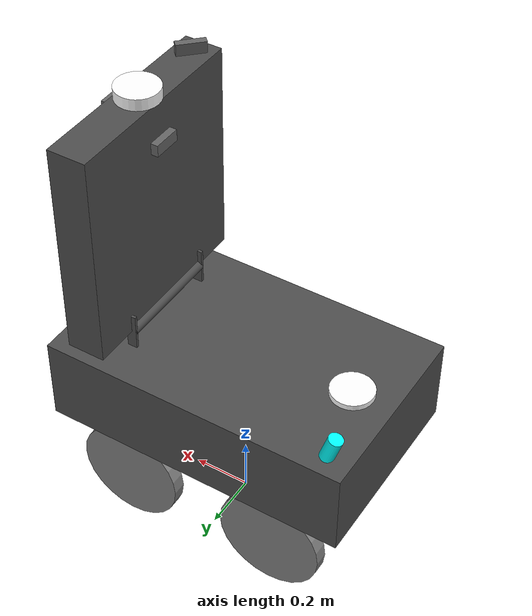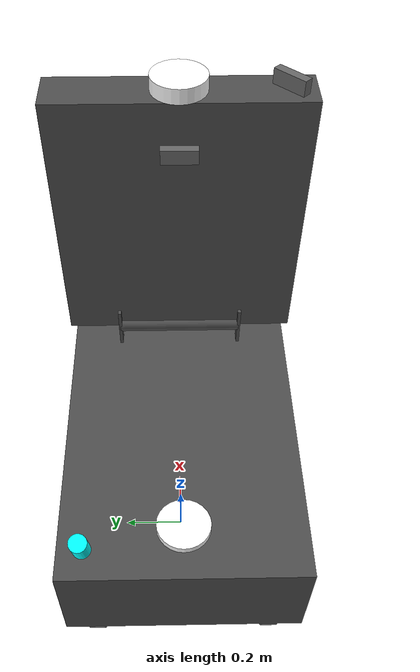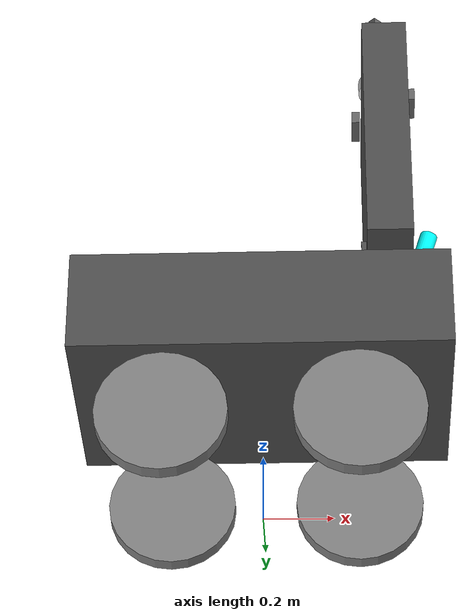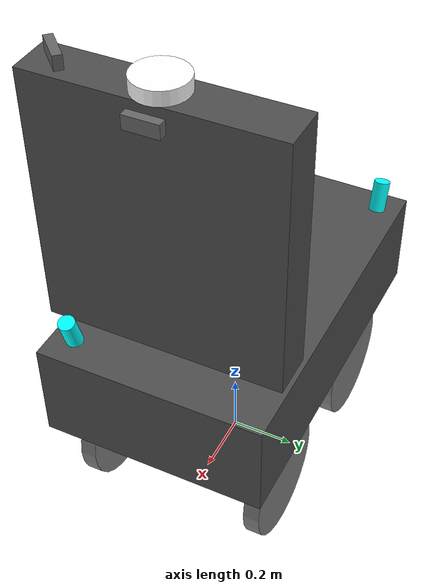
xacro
<?xml version="1.0" ?>
<!-- |    This document was autogenerated by xacro from /home/swimming/gcamp_ros2_ws/src/gcamp_ros2_basic/gcamp_gazebo/urdf/skidbot2.urdf.xacro | -->
<!-- |    EDITING THIS FILE BY HAND IS NOT RECOMMENDED                                 | -->
<robot xmlns:xacro="http://www.ros.org/wiki/xacro" name="easyai">
  <xacro:property name="PI" value="3.1415926535"/><!--파이 값-->

  <xacro:property name="BASE_LEN" value="1.091"/><!--이지아이 몸통  길이-->
  <xacro:property name="BASE_WID" value="0.684"/><!--이지아이 몸통 너비-->
  <xacro:property name="BASE_HIG" value="0.308"/> <!--이지아이 몸통 높이-->

  <xacro:property name="WHEEL_LEN_SEP" value="0.554"/><!--바퀴 세로 간격-->
  <xacro:property name="WHEEL_WID_SEP" value="0.554"/><!--바퀴 가로 간격-->
  <xacro:property name="WHEEL_RAD" value="0.187"/><!--바퀴 반 지름 수정 후 (바퀴 베이스 높이 만큼 바퀴 크기 증가)-->
  <xacro:property name="WHEEL_WID" value="0.05"/><!--바퀴 너비-->

  <!-- 바퀴 베이스 tf 복잡하여 사용 안함(주석 처리) -->

  <xacro:property name="VMS_LEN" value="0.765"/><!--전광판 길이-->
  <xacro:property name="VMS_WID" value="0.701"/><!--전광판 너비 -->
  <xacro:property name="VMS_HIG" value="0.134"/><!--전광판 높이-->

  <xacro:property name="VMS_CYLINDER_RAD" value="0.020"/><!--전광판 관절 반지름 -->
  <xacro:property name="VMS_CYLINDER_WID" value="0.380"/><!--전광판 관절 길이 -->

  <xacro:property name="VMS_CYLINDER_X_LEN" value="0.235"/><!--전면으로부터 전광판 X축 관절 간격 -->

  <xacro:property name="VMS_CYLINDER_BASE_LEN" value="0.035"/><!--전광판 관절 베이스 길이 -->
  <xacro:property name="VMS_CYLINDER_BASE_WID" value="0.01"/><!--전광판 관절 베이스 두께 -->
  <xacro:property name="VMS_CYLINDER_BASE_HIG" value="0.13"/><!--전광판 관절 베이스 높이 -->

  <!-- 라이다 베이스 tf 복잡하여 사용 안함(주석 처리) -->

  <xacro:property name="LIDAR_RAD" value="0.025"/>  <!-- 라이다 길이 -->
  <xacro:property name="LIDAR_HIG" value="0.095"/>  <!-- 라이다 높이(0.06) + 라이다 베이스 높이(0.035)-->
  <!-- 베이스 높이만큼 라이다 높이 증가 -->
  <xacro:property name="M_PI" value="3.14159"/>
  <xacro:property name="laser_min_range" value="0.1"/>
  <xacro:property name="laser_max_range" value="200.0"/>
  <xacro:property name="ros_topic" value="scan"/>
  <xacro:property name="samples" value="24000"/>
  <xacro:property name="downsample" value="1"/>

  <xacro:property name="F_LIDAR_SEP_LEN" value="0.072"/>  <!-- 전면 라이다  세로 간격  -->
  <xacro:property name="F_LIDAR_SEP_WID" value="0.072"/>  <!-- 전면 라이다 가로 간격 -->

  <xacro:property name="B_LIDAR_SEP_LEN" value="0.072"/>  <!-- 후면 라이다  세로 간격  -->
  <xacro:property name="B_LIDAR_SEP_WID" value="0.070"/>  <!-- 후면 라이다 가로 간격 -->

  <xacro:property name="CAMERA_LEN" value="0.025"/>  <!-- 카메라 길이 -->
  <xacro:property name="CAMERA_WID" value="0.1"/>  <!-- 카메라 너비-->
  <xacro:property name="CAMERA_HIG" value="0.04"/>  <!-- 카메라 높이 -->
  <xacro:property name="CAMERA_X_LEN" value="0.042"/>  <!-- 카메라 X 간격 -->
  <xacro:property name="LEFT_CAMERA_Y_LEN" value="0.06"/>  <!-- 왼쪽 카메라 Y 간격 -->

  <xacro:property name="LEFT_CAMERA_X_LEN" value="0.06"/>  <!-- 왼쪽 카메라 X축 간격 -->
  <xacro:property name="LEFT_CAMERA_Y_LEN" value="0.07"/>  <!-- 왼쪽 카메라 Y축 간격 -->

  <xacro:property name="BACK_CAMERA_X_LEN" value="0.13"/>  <!-- 뒤쪽 카메라 X축 간격 -->

  <xacro:property name="GPS_ANTENNA_RAD" value="0.075"/>  <!-- GPS 안테나 반지름 -->
  <xacro:property name="GPS_ANTENNA_HIG" value="0.04"/>  <!-- GPS 안테나 높이 -->

  <xacro:property name="BASE_GPS_ANTENNA_SEP" value="0.15"/>  <!-- 몸통 GPS 안테나 간격  -->

  <xacro:property name="IMU_LEN" value="0.035"/>  <!-- IMU 길이 -->
  <xacro:property name="IMU_WID" value="0.035"/>  <!-- IMU 너비 -->
  <xacro:property name="IMU_HIG" value="0.01"/>  <!-- IMU 높이 -->
  <xacro:property name="IMU_X_SEP" value="0.225"/>  <!-- IMU X축 간격 -->

  <xacro:property name="IMU_GYRO_NOISE" value="0.015"/>
  <xacro:property name="IMU_ACCELEROMETER_NOISE" value="9.81"/>

  <xacro:property name="WHEEL_MASS" value="8.0"/><!--바퀴 무게-->
  <xacro:property name="BASE_LINK_MASS" value="200.0"/><!--이지아이 몸통 무게-->
  <xacro:property name="WHEEL_BASE_MASS" value="4.0"/><!--바퀴 베이스 무게-->

  <xacro:property name="VMS_MASS" value="20.0"/> <!--전광팡 무게-->
  <xacro:property name="VMS_CYLINDER_MASS" value="10.0"/> <!--전광팡 관절 무게-->
  <xacro:property name="VMS_CYLINDER_BASE_MASS" value="1.0"/> <!--전광팡 관절 베이스 무게-->

  <xacro:property name="CAMERA_MASS" value="2.0"/> <!--카메라 무게-->

  <xacro:property name="GPS_ANTENNA_MASS" value="2.0"/> <!--GPS 안테나 무게-->

  <xacro:property name="LIDAR_MASS" value="0.265"/> <!--라이다 무게-->
  <xacro:property name="LIDAR_BASE_MASS" value="0.1"/> <!--라이다 베이스 무게-->

  <xacro:property name="IMU_MASS" value="0.05"/> <!--IMU 무게-->

<!--배터리 탱크 길이-->
<!--배터리 탱크 높이-->
<!--배터리 탱크 너비-->

  <material name="dark">
    <color rgba="0.3 0.3 0.3 1.0"/>
  </material>

  <material name="mid_dark">
    <color rgba="0.40 0.40 0.40 1.0"/>
  </material>

  <material name="gray">
    <color rgba="0.5 0.5 0.5 1.0"/>
  </material>

  <material name="blue_green">
    <color rgba="0 1.0 1.0 1.0"/>
  </material>

  <material name="white">
    <color rgba="1.0 1.0 1.0 1.0"/>
  </material>

  <link name="base_link"/>

  <link name="base_chassis">
    <visual>
      <origin xyz="0 0 0" rpy="0 0 0"/>
      <geometry>
        <box size="${BASE_LEN} ${BASE_WID} ${BASE_HIG}"/>
      </geometry>
      <material name="dark"/>
    </visual>

    <collision>
      <origin xyz="0 0 0" rpy="0 0 0"/>
      <geometry>
        <box size="${BASE_LEN} ${BASE_WID} ${BASE_HIG}"/>
      </geometry>
    </collision>

    <inertial>
      <mass value="${BASE_LINK_MASS}"/>
      <origin xyz="0 0 0" rpy="0 0 0"/>
      <inertia
        ixx="${BASE_LINK_MASS/12.0 * (BASE_WID*BASE_WID + BASE_HIG*BASE_HIG)}"
        iyy="${BASE_LINK_MASS/12.0 * (BASE_LEN*BASE_LEN + BASE_HIG*BASE_HIG)}"
        izz="${BASE_LINK_MASS/12.0 * (BASE_LEN*BASE_LEN + BASE_WID*BASE_WID)}"
        ixy="0.0" ixz="0.0" iyz="0.0"/>
    </inertial>
  </link>

  <link name="imu">
    <visual>
      <origin xyz="0 0 0" rpy="0 0 0"/>
      <geometry>
        <box size="${IMU_LEN} ${IMU_WID} ${IMU_HIG}"/>
      </geometry>
      <material name="mid_dark"/>
    </visual>

    <collision>
      <origin xyz="0 0 0" rpy="0 0 0"/>
      <geometry>
        <box size="${IMU_LEN} ${IMU_WID} ${IMU_HIG}"/>
      </geometry>
    </collision>

    <inertial>
      <mass value="${IMU_MASS}"/>
      <origin xyz="0 0 0" rpy="0 0 0"/>
      <inertia
        ixx="${IMU_MASS/12.0 * (IMU_WID*IMU_WID + IMU_HIG*IMU_HIG)}"
        iyy="${IMU_MASS/12.0 * (IMU_LEN*IMU_LEN + IMU_HIG*IMU_HIG)}"
        izz="${IMU_MASS/12.0 * (IMU_LEN*IMU_LEN + IMU_WID*IMU_WID)}"
        ixy="0" ixz="0" iyz="0"
      />
    </inertial>
  </link>

  <link name="base_link_gps">
    <visual>
      <origin xyz="0 0 0" rpy="0 0 0"/>
      <geometry>
        <cylinder radius="${GPS_ANTENNA_RAD}" length="${GPS_ANTENNA_HIG}"/>
      </geometry>
      <material name="white"/>
    </visual>

    <collision>
      <origin xyz="0 0 0" rpy="0 0 0"/>
      <geometry>
        <cylinder radius="${GPS_ANTENNA_RAD}" length="${GPS_ANTENNA_HIG}"/>
      </geometry>
    </collision>

    <inertial>
      <mass value="${GPS_ANTENNA_MASS}"/>
      <origin xyz="0 0 0" rpy="0 0 0"/>
      <inertia
        ixx="${0.5*GPS_ANTENNA_MASS*GPS_ANTENNA_HIG*GPS_ANTENNA_HIG}"
        iyy="${(1.0/12.0)*GPS_ANTENNA_MASS*(3*GPS_ANTENNA_RAD*GPS_ANTENNA_RAD + GPS_ANTENNA_HIG*GPS_ANTENNA_HIG)}"
        izz="${(1.0/12.0)*GPS_ANTENNA_MASS*(3*GPS_ANTENNA_RAD*GPS_ANTENNA_RAD + GPS_ANTENNA_HIG*GPS_ANTENNA_HIG)}"
        ixy="0.0" ixz="0.0" iyz="0.0"
      />
    </inertial>
  </link>

  <link name="vms_base">
    <visual>
      <origin xyz="0 0 0" rpy="0 0 0"/>
      <geometry>
        <box size="${VMS_LEN} ${VMS_WID} ${VMS_HIG}"/>
      </geometry>
      <material name="dark"/>
    </visual>

    <collision>
      <origin xyz="0 0 0" rpy="0 0 0"/>
      <geometry>
        <box size="${VMS_LEN} ${VMS_WID} ${VMS_HIG}"/>
      </geometry>
    </collision>

    <inertial>
      <mass value="${VMS_MASS}"/>
      <origin xyz="0 0 0" rpy="0 0 0"/>
      <inertia
        ixx="${VMS_MASS/12.0 * (VMS_WID*VMS_WID + VMS_HIG*VMS_HIG)}"
        iyy="${VMS_MASS/12.0 * (VMS_LEN*VMS_LEN + VMS_HIG*VMS_HIG)}"
        izz="${VMS_MASS/12.0 * (VMS_LEN*VMS_LEN + VMS_WID*VMS_WID)}"
        ixy="0.0" ixz="0.0" iyz="0.0"/>
    </inertial>
  </link>

  <link name="vms_cylinder">
    <visual>
      <origin xyz="0 0 0" rpy="${PI/2} 0 0"/>
      <geometry>
        <cylinder radius="${VMS_CYLINDER_RAD}" length="${VMS_CYLINDER_WID}"/>
      </geometry>
      <material name="dark"/>
    </visual>

    <collision>
      <origin xyz="0 0 0" rpy="${PI/2} 0 0"/>
      <geometry>
        <cylinder radius="${VMS_CYLINDER_RAD}" length="${VMS_CYLINDER_WID}"/>
      </geometry>
    </collision>

    <inertial>
      <mass value="${VMS_CYLINDER_MASS}"/>
      <origin xyz="0 0 0" rpy="${PI/2} 0 0"/>
      <inertia
        ixx="${0.5*VMS_CYLINDER_MASS*VMS_CYLINDER_RAD*VMS_CYLINDER_RAD}"
        iyy="${(1.0/12.0)*VMS_CYLINDER_MASS*(3*VMS_CYLINDER_RAD*VMS_CYLINDER_RAD + VMS_CYLINDER_WID*VMS_CYLINDER_WID)}"
        izz="${(1.0/12.0)*VMS_CYLINDER_MASS*(3*VMS_CYLINDER_RAD*VMS_CYLINDER_RAD + VMS_CYLINDER_WID*VMS_CYLINDER_WID)}"
        ixy="0.0" ixz="0.0" iyz="0.0"/>
    </inertial>
  </link>

  <link name="vms_cylinder_base_left">
    <visual>
      <origin xyz="0 0 0" rpy="0 0 0"/>
      <geometry>
        <box size="${VMS_CYLINDER_BASE_LEN} ${VMS_CYLINDER_BASE_WID} ${VMS_CYLINDER_BASE_HIG}"/>
      </geometry>
      <material name="dark"/>
    </visual>

    <collision>
      <origin xyz="0 0 0" rpy="0 0 0"/>
      <geometry>
        <box size="${VMS_CYLINDER_BASE_LEN} ${VMS_CYLINDER_BASE_WID} ${VMS_CYLINDER_BASE_HIG}"/>
      </geometry>
    </collision>

    <inertial>
      <mass value="${VMS_CYLINDER_BASE_MASS}"/>
      <origin xyz="0 0 0" rpy="0 0 0"/>
      <inertia
        ixx="${VMS_CYLINDER_BASE_MASS/12.0 * (VMS_CYLINDER_BASE_WID*VMS_CYLINDER_BASE_WID + VMS_CYLINDER_BASE_HIG*VMS_CYLINDER_BASE_HIG)}"
        iyy="${VMS_CYLINDER_BASE_MASS/12.0 * (VMS_CYLINDER_BASE_LEN*VMS_CYLINDER_BASE_LEN + VMS_CYLINDER_BASE_HIG*VMS_CYLINDER_BASE_HIG)}"
        izz="${VMS_CYLINDER_BASE_MASS/12.0 * (VMS_CYLINDER_BASE_LEN*VMS_CYLINDER_BASE_LEN + VMS_CYLINDER_BASE_WID*VMS_CYLINDER_BASE_WID)}"
        ixy="0" ixz="0" iyz="0"
      />
    </inertial>
  </link>

  <link name="vms_cylinder_base_right">
    <visual>
      <origin xyz="0 0 0" rpy="0 0 0"/>
      <geometry>
        <box size="${VMS_CYLINDER_BASE_LEN} ${VMS_CYLINDER_BASE_WID} ${VMS_CYLINDER_BASE_HIG}"/>
      </geometry>
      <material name="dark"/>
    </visual>

    <collision>
      <origin xyz="0 0 0" rpy="0 0 0"/>
      <geometry>
        <box size="${VMS_CYLINDER_BASE_LEN} ${VMS_CYLINDER_BASE_WID} ${VMS_CYLINDER_BASE_HIG}"/>
      </geometry>
    </collision>

    <inertial>
      <mass value="${VMS_CYLINDER_BASE_MASS}"/>
      <origin xyz="0 0 0" rpy="0 0 0"/>
      <inertia
        ixx="${VMS_CYLINDER_BASE_MASS/12.0 * (VMS_CYLINDER_BASE_WID*VMS_CYLINDER_BASE_WID + VMS_CYLINDER_BASE_HIG*VMS_CYLINDER_BASE_HIG)}"
        iyy="${VMS_CYLINDER_BASE_MASS/12.0 * (VMS_CYLINDER_BASE_LEN*VMS_CYLINDER_BASE_LEN + VMS_CYLINDER_BASE_HIG*VMS_CYLINDER_BASE_HIG)}"
        izz="${VMS_CYLINDER_BASE_MASS/12.0 * (VMS_CYLINDER_BASE_LEN*VMS_CYLINDER_BASE_LEN + VMS_CYLINDER_BASE_WID*VMS_CYLINDER_BASE_WID)}"
        ixy="0" ixz="0" iyz="0"
      />
    </inertial>
  </link>

  <link name="vms_camera">
    <visual>
    <origin xyz="0 0 0" rpy="0 0 0"/>
      <geometry>
        <box size="${CAMERA_LEN} ${CAMERA_WID} ${CAMERA_HIG}"/>
      </geometry>
      <material name="mid_dark"/>
    </visual>

    <collision>
      <origin xyz="0 0 0" rpy="0 0 0"/>
      <geometry>
        <box size="${CAMERA_LEN} ${CAMERA_WID} ${CAMERA_HIG}"/>
      </geometry>
    </collision>

    <inertial>
      <mass value="${CAMERA_MASS}"/>
      <origin xyz="0 0 0" rpy="0 0 0"/>
      <inertia
        ixx="${CAMERA_MASS/12.0 * (CAMERA_WID*CAMERA_WID + CAMERA_HIG*CAMERA_HIG)}"
        iyy="${CAMERA_MASS/12.0 * (CAMERA_LEN*CAMERA_LEN + CAMERA_HIG*CAMERA_HIG)}"
        izz="${CAMERA_MASS/12.0 * (CAMERA_LEN*CAMERA_LEN + CAMERA_WID*CAMERA_WID)}"
        ixy="0" ixz="0" iyz="0"
      />
    </inertial>
  </link>

  <link name="vms_left_camera_yaw_link"/>

  <link name="vms_left_camera">
    <visual>
      <origin xyz="0 0 0" rpy="0 0 0"/>
      <geometry>
        <box size="${CAMERA_LEN} ${CAMERA_WID} ${CAMERA_HIG}"/>
      </geometry>
      <material name="mid_dark"/>
    </visual>

    <collision>
      <origin xyz="0 0 0" rpy="0 0 0"/>
      <geometry>
        <box size="${CAMERA_LEN} ${CAMERA_WID} ${CAMERA_HIG}"/>
      </geometry>
    </collision>

    <inertial>
      <mass value="${CAMERA_MASS}"/>
      <origin xyz="0 0 0" rpy="0 0 0"/>
      <inertia
        ixx="${CAMERA_MASS/12.0 * (CAMERA_WID*CAMERA_WID + CAMERA_HIG*CAMERA_HIG)}"
        iyy="${CAMERA_MASS/12.0 * (CAMERA_LEN*CAMERA_LEN + CAMERA_HIG*CAMERA_HIG)}"
        izz="${CAMERA_MASS/12.0 * (CAMERA_LEN*CAMERA_LEN + CAMERA_WID*CAMERA_WID)}"
        ixy="0" ixz="0" iyz="0"
      />
    </inertial>
  </link>

  <link name="vms_back_camera">
    <visual>
      <origin xyz="0 0 0" rpy="0 0 0"/>
      <geometry>
        <box size="${CAMERA_LEN} ${CAMERA_WID} ${CAMERA_HIG}"/>
      </geometry>
      <material name="mid_dark"/>
    </visual>

    <collision>
      <origin xyz="0 0 0" rpy="0 0 0"/>
      <geometry>
        <box size="${CAMERA_LEN} ${CAMERA_WID} ${CAMERA_HIG}"/>
      </geometry>
    </collision>

    <inertial>
      <mass value="${CAMERA_MASS}"/>
      <origin xyz="0 0 0" rpy="0 0 0"/>
      <inertia
        ixx="${CAMERA_MASS/12.0 * (CAMERA_WID*CAMERA_WID + CAMERA_HIG*CAMERA_HIG)}"
        iyy="${CAMERA_MASS/12.0 * (CAMERA_LEN*CAMERA_LEN + CAMERA_HIG*CAMERA_HIG)}"
        izz="${CAMERA_MASS/12.0 * (CAMERA_LEN*CAMERA_LEN + CAMERA_WID*CAMERA_WID)}"
        ixy="0" ixz="0" iyz="0"
      />
    </inertial>
  </link>

  <link name="vms_gps">
    <visual>
      <origin xyz="0 0 0" rpy="0 0 0"/>
      <geometry>
        <cylinder radius="${GPS_ANTENNA_RAD}" length="${GPS_ANTENNA_HIG}"/>
      </geometry>
      <material name="white"/>
    </visual>

    <collision>
      <origin xyz="0 0 0" rpy="0 0 0"/>
      <geometry>
        <cylinder radius="${GPS_ANTENNA_RAD}" length="${GPS_ANTENNA_HIG}"/>
      </geometry>
    </collision>

    <inertial>
      <mass value="${GPS_ANTENNA_MASS}"/>
      <origin xyz="0 0 0" rpy="0 0 0"/>
      <inertia
        ixx="${0.5*GPS_ANTENNA_MASS*GPS_ANTENNA_HIG*GPS_ANTENNA_HIG}"
        iyy="${(1.0/12.0)*GPS_ANTENNA_MASS*(3*GPS_ANTENNA_RAD*GPS_ANTENNA_RAD + GPS_ANTENNA_HIG*GPS_ANTENNA_HIG)}"
        izz="${(1.0/12.0)*GPS_ANTENNA_MASS*(3*GPS_ANTENNA_RAD*GPS_ANTENNA_RAD + GPS_ANTENNA_HIG*GPS_ANTENNA_HIG)}"
        ixy="0.0" ixz="0.0" iyz="0.0"
      />
    </inertial>
  </link>

  <link name="front_lidar">
    <visual>
      <origin xyz="0 0 0" rpy="0 0 0"/>
      <geometry>
        <cylinder radius="${LIDAR_RAD}" length="${LIDAR_HIG}"/>
      </geometry>
      <material name="blue_green"/>
    </visual>

    <collision>
      <origin xyz="0 0 0" rpy="0 0 0"/>
      <geometry>
        <cylinder radius="${LIDAR_RAD}" length="${LIDAR_HIG}"/>
      </geometry>
    </collision>

    <inertial>
      <mass value="${LIDAR_MASS}"/>
      <origin xyz="0 0 0" rpy="0 0 0"/>
      <inertia
        ixx="${0.5*LIDAR_MASS*LIDAR_HIG*LIDAR_HIG}"
        iyy="${(1.0/12.0)*LIDAR_MASS*(3*LIDAR_RAD*LIDAR_RAD + LIDAR_HIG*LIDAR_HIG)}"
        izz="${(1.0/12.0)*LIDAR_MASS*(3*LIDAR_RAD*LIDAR_RAD + LIDAR_HIG*LIDAR_HIG)}"
        ixy="0.0" ixz="0.0" iyz="0.0"
      />
    </inertial>
  </link>

  <link name="back_lidar">
    <visual>
      <origin xyz="0 0 0" rpy="0 0 0"/>
      <geometry>
        <cylinder radius="${LIDAR_RAD}" length="${LIDAR_HIG}"/>
      </geometry>
      <material name="blue_green"/>
    </visual>

    <collision>
      <origin xyz="0 0 0" rpy="0 0 0"/>
      <geometry>
        <cylinder radius="${LIDAR_RAD}" length="${LIDAR_HIG}"/>
      </geometry>
    </collision>

    <inertial>
      <mass value="${LIDAR_MASS}"/>
      <origin xyz="0 0 0" rpy="0 0 0"/>
      <inertia
        ixx="${0.5*LIDAR_MASS*LIDAR_HIG*LIDAR_HIG}"
        iyy="${(1.0/12.0)*LIDAR_MASS*(3*LIDAR_RAD*LIDAR_RAD + LIDAR_HIG*LIDAR_HIG)}"
        izz="${(1.0/12.0)*LIDAR_MASS*(3*LIDAR_RAD*LIDAR_RAD + LIDAR_HIG*LIDAR_HIG)}"
        ixy="0.0" ixz="0.0" iyz="0.0"
      />
    </inertial>
  </link>

  <link name="front_left_wheel">
    <visual>
      <origin xyz="0 0 0" rpy="${PI/2} 0 0"/>
      <geometry>
        <cylinder radius="${WHEEL_RAD}" length="${WHEEL_WID}"/>
      </geometry>
      <material name="gray"/>
    </visual>

    <collision>
      <origin xyz="0 0 0" rpy="${PI/2} 0 0"/>
      <geometry>
        <cylinder radius="${WHEEL_RAD}" length="${WHEEL_WID}"/>
      </geometry>
    </collision>

    <inertial>
      <mass value="${WHEEL_MASS}"/>
      <origin xyz="0 0 0" rpy="${PI/2} 0 0"/>
      <inertia
        ixx="${0.5*WHEEL_MASS*WHEEL_RAD*WHEEL_RAD}"
        iyy="${(1.0/12.0)*WHEEL_MASS*(3*WHEEL_RAD*WHEEL_RAD + WHEEL_WID*WHEEL_WID)}"
        izz="${(1.0/12.0)*WHEEL_MASS*(3*WHEEL_RAD*WHEEL_RAD + WHEEL_WID*WHEEL_WID)}"
        ixy="0.0" ixz="0.0" iyz="0.0"
      />
    </inertial>
  </link>

  <link name="back_left_wheel">
    <visual>
      <origin xyz="0 0 0" rpy="${PI/2} 0 0"/>
      <geometry>
        <cylinder radius="${WHEEL_RAD}" length="${WHEEL_WID}"/>
      </geometry>
      <material name="gray"/>
    </visual>

    <collision>
      <origin xyz="0 0 0" rpy="${PI/2} 0 0"/>
      <geometry>
        <cylinder radius="${WHEEL_RAD}" length="${WHEEL_WID}"/>
      </geometry>
    </collision>

    <inertial>
      <mass value="${WHEEL_MASS}"/>
      <origin xyz="0 0 0" rpy="${PI/2} 0 0"/>
      <inertia
        ixx="${0.5*WHEEL_MASS*WHEEL_RAD*WHEEL_RAD}"
        iyy="${(1.0/12.0)*WHEEL_MASS*(3*WHEEL_RAD*WHEEL_RAD + WHEEL_WID*WHEEL_WID)}"
        izz="${(1.0/12.0)*WHEEL_MASS*(3*WHEEL_RAD*WHEEL_RAD + WHEEL_WID*WHEEL_WID)}"
        ixy="0.0" ixz="0.0" iyz="0.0"
      />
    </inertial>
  </link>

  <link name="front_right_wheel">
    <visual>
      <origin xyz="0 0 0" rpy="${PI/2} 0 0"/>
      <geometry>
        <cylinder radius="${WHEEL_RAD}" length="${WHEEL_WID}"/>
      </geometry>
      <material name="gray"/>
    </visual>

    <collision>
      <origin xyz="0 0 0" rpy="${PI/2} 0 0"/>
      <geometry>
        <cylinder radius="${WHEEL_RAD}" length="${WHEEL_WID}"/>
      </geometry>
    </collision>

    <inertial>
      <mass value="${WHEEL_MASS}"/>
      <origin xyz="0 0 0" rpy="${PI/2} 0 0"/>
      <inertia
        ixx="${0.5*WHEEL_MASS*WHEEL_RAD*WHEEL_RAD}"
        iyy="${(1.0/12.0)*WHEEL_MASS*(3*WHEEL_RAD*WHEEL_RAD + WHEEL_WID*WHEEL_WID)}"
        izz="${(1.0/12.0)*WHEEL_MASS*(3*WHEEL_RAD*WHEEL_RAD + WHEEL_WID*WHEEL_WID)}"
        ixy="0.0" ixz="0.0" iyz="0.0"
      />
    </inertial>
  </link>

  <link name="back_right_wheel">
    <visual>
      <origin xyz="0 0 0" rpy="${PI/2} 0 0"/>
      <geometry>
        <cylinder radius="${WHEEL_RAD}" length="${WHEEL_WID}"/>
      </geometry>
      <material name="gray"/>
    </visual>

    <collision>
      <origin xyz="0 0 0" rpy="${PI/2} 0 0"/>
      <geometry>
        <cylinder radius="${WHEEL_RAD}" length="${WHEEL_WID}"/>
      </geometry>
    </collision>

    <inertial>
      <mass value="${WHEEL_MASS}"/>
      <origin xyz="0 0 0" rpy="${PI/2} 0 0"/>
      <inertia
        ixx="${0.5*WHEEL_MASS*WHEEL_RAD*WHEEL_RAD}"
        iyy="${(1.0/12.0)*WHEEL_MASS*(3*WHEEL_RAD*WHEEL_RAD + WHEEL_WID*WHEEL_WID)}"
        izz="${(1.0/12.0)*WHEEL_MASS*(3*WHEEL_RAD*WHEEL_RAD + WHEEL_WID*WHEEL_WID)}"
        ixy="0.0" ixz="0.0" iyz="0.0"
      />
    </inertial>
  </link>

  <!-- base_link는 지면 좌표, base_chassis 지면으로부터 떨어져 있는 실제 로봇 몸통 중심 높이(바퀴 크기 + 로봇 몸통 중간-->
  <joint name="base_joint" type="fixed">
    <origin xyz="0 0 ${BASE_HIG/2 +WHEEL_RAD*2}" rpy="0 0 0"/>
    <parent link="base_link"/>
    <child link="base_chassis"/>
  </joint>

  <joint name="imu_joint" type="fixed">
    <origin xyz="${BASE_LEN/2 - IMU_X_SEP} 0 ${IMU_HIG/2}" rpy="0 0 0"/>
    <parent link="base_chassis"/>
    <child link="imu"/>
  </joint>

  <!-- 좌/우 베이스: y=±(실린더 길이/2), z는 베이스 높이 맞춤 -->
  <!-- 좌/우 베이스 고정 -->
  <joint name="vms_cylinder_base_joint_left" type="fixed">
    <origin xyz="${BASE_LEN/2 - VMS_CYLINDER_X_LEN} ${ VMS_CYLINDER_WID/2} ${BASE_HIG/2 + VMS_CYLINDER_BASE_HIG/2}" rpy="0 0 0"/>
    <parent link="base_chassis"/>
    <child  link="vms_cylinder_base_left"/>
  </joint>

  <joint name="vms_cylinder_base_joint_right" type="fixed">
    <origin xyz="${BASE_LEN/2 - VMS_CYLINDER_X_LEN} ${-VMS_CYLINDER_WID/2} ${BASE_HIG/2 + VMS_CYLINDER_BASE_HIG/2}" rpy="0 0 0"/>
    <parent link="base_chassis"/>
    <child  link="vms_cylinder_base_right"/>
  </joint>

  <!-- 힌지도 같은 x/z로 -->
  <joint name="vms_cylinder_joint" type="fixed">
    <origin xyz="${BASE_LEN/2 - VMS_CYLINDER_X_LEN} 0 ${BASE_HIG/2 + VMS_CYLINDER_BASE_HIG/2}" rpy="0 ${PI/2} 0"/>
    <parent link="base_chassis"/>
    <child  link="vms_cylinder"/>
  </joint>

  <joint name="vms_joint" type="fixed">
    <origin xyz="${-VMS_LEN/2} 0 ${VMS_CYLINDER_BASE_HIG/2}" rpy="0 0 0"/>
    <parent link="vms_cylinder"/>
    <child  link="vms_base"/>
  </joint>

  <!--VMS 카메라-->
  <joint name="vms_camera_joint" type="fixed">
    <origin xyz="-${VMS_LEN/2 - CAMERA_X_LEN} 0 ${VMS_HIG/2 + CAMERA_HIG/2}" rpy="0 -${90*PI/180} 0"/>
    <parent link="vms_base"/>
    <child link="vms_camera"/>
  </joint>

  <!-- [1] 위치 이동 + YAW=+45°를 먼저 적용 -->
  <joint name="vms_left_camera_yaw_joint" type="fixed">
    <origin
      xyz="-${VMS_LEN/2 + CAMERA_HIG/2} -${VMS_WID/2 - LEFT_CAMERA_Y_LEN} 0" rpy="${45*PI/180} 0 0"/>
    <parent link="vms_base"/>
    <child  link="vms_left_camera_yaw_link"/>
  </joint>

  <!-- [2] 그 다음 PITCH/ROLL만 적용 (예: 좌측을 바라보게 pitch=-90°) -->
  <joint name="vms_left_camera_joint" type="fixed">
    <origin xyz="0 0 0" rpy="0 -${90*PI/180} 0"/>
    <parent link="vms_left_camera_yaw_link"/>
    <child  link="vms_left_camera"/>
  </joint>

  <joint name="vms_back_camera_joint" type="fixed">
    <origin xyz="-${VMS_LEN/2 - BACK_CAMERA_X_LEN} 0 -${VMS_HIG/2 + CAMERA_HIG/2}" rpy="-${180*PI/180} ${90*PI/180} 0"/>
    <parent link="vms_base"/>
    <child link="vms_back_camera"/>
  </joint>

  <!--VMS GPS-->
  <joint name="vms_gps_joint" type="fixed">
    <origin xyz="-${VMS_LEN/2 + GPS_ANTENNA_HIG/2} 0 0" rpy="0 -${PI/2} 0"/>
    <parent link="vms_base"/>
    <child link="vms_gps"/>
  </joint>

  <!-- 몸통 GPS -->
  <joint name="base_link_gps_joint" type="fixed">
    <origin xyz="-${BASE_LEN/2 - BASE_GPS_ANTENNA_SEP} 0 ${BASE_HIG/2}" rpy="0 0 0"/>
    <parent link="base_chassis"/>
    <child link="base_link_gps"/>
  </joint>

  <!--바퀴 -->
  <joint name="front_left_wheel_joint" type="continuous">
    <origin xyz="${WHEEL_LEN_SEP/2} ${WHEEL_WID_SEP/2} ${-(WHEEL_RAD + BASE_HIG/2)}" rpy="0 0 0"/>
    <parent link="base_chassis"/>
    <child link="front_left_wheel"/>
    <axis xyz="0 1 0"/>
  </joint>

  <joint name="back_left_wheel_joint" type="continuous">
    <origin xyz="-${WHEEL_LEN_SEP/2} ${WHEEL_WID_SEP/2} ${-(WHEEL_RAD+ BASE_HIG/2)}" rpy="0 0 0"/>
    <parent link="base_chassis"/>
    <child link="back_left_wheel"/>
    <axis xyz="0 1 0"/>
  </joint>

  <joint name="front_right_wheel_joint" type="continuous">
    <origin xyz="${WHEEL_LEN_SEP/2} -${WHEEL_WID_SEP/2} ${-(WHEEL_RAD + BASE_HIG/2)}" rpy="0 0 0"/>
    <parent link="base_chassis"/>
    <child link="front_right_wheel"/>
    <axis xyz="0 1 0"/>
  </joint>

  <joint name="back_right_wheel_joint" type="continuous">
    <origin xyz="-${WHEEL_LEN_SEP/2} -${WHEEL_WID_SEP/2} ${-(WHEEL_RAD + BASE_HIG/2)}" rpy="0 0 0"/>
    <parent link="base_chassis"/>
    <child link="back_right_wheel"/>
    <axis xyz="0 1 0"/>
  </joint>

  <!--바퀴 베이스-->

  <!-- 라이다 -->
  <joint name="front_lidar_joint" type="fixed">
    <origin xyz="${BASE_LEN/2 - F_LIDAR_SEP_LEN} -${BASE_WID/2 - F_LIDAR_SEP_WID} ${BASE_HIG/2 + LIDAR_HIG/2}" rpy="0 ${17*PI/180} 0"/> <!-- 라이다만 17도로 변경하기 -->
    <parent link="base_chassis"/>
    <child link="front_lidar"/>
  </joint>

  <joint name="back_lidar_joint" type="fixed">
    <origin xyz="-${BASE_LEN/2 - B_LIDAR_SEP_LEN} ${BASE_WID/2 - B_LIDAR_SEP_WID} ${BASE_HIG/2 + LIDAR_HIG/2}" rpy="0 ${17*PI/180} ${PI}"/> 라이다만 17도로 변경하기
    <parent link="base_chassis"/>
    <child link="back_lidar"/>
  </joint>

  <!-- 라이다 베이스 주석처리 -->

  <gazebo reference="base_link">
    <material>Gazebo/White</material>
  </gazebo>

  <gazebo reference="vms_base">
    <material>Gazebo/Gray</material>
  </gazebo>

  <gazebo reference="vms_cylinder">
    <material>Gazebo/Gray</material>
  </gazebo>

  <gazebo reference="front_left_wheel">
    <material>Gazebo/Black</material>
  </gazebo>
  <gazebo reference="back_left_wheel">
    <material>Gazebo/Black</material>
  </gazebo>
  <gazebo reference="front_right_wheel">
    <material>Gazebo/Black</material>
  </gazebo>
  <gazebo reference="back_right_wheel">
    <material>Gazebo/Black</material>
  </gazebo>

  <gazebo reference="vms_camera"> <!-- vms_left_camera에 카메라 센서 붙임-->
    <material>Gazebo/DarkGrey </material>
    <sensor name="camera" type="camera"> <!-- name = 센서의 고유 이름, type = 카메라 센서 -->
      <always_on>1</always_on> <!-- 시뮬레이션 실행 시 항상 작동 -->
      <update_rate>30.0</update_rate> <!-- 카메라 프레임 레이트 = 30 -->

      <camera> <!-- 카메라의 시각적 특성 정의 -->
        <horizontal_fov>1.047</horizontal_fov> <!-- 카메라 수평 시야 각-->

        <image> <!-- 이미지 출력 설정 -->
          <width>640</width> <!-- 가로 해상도 -->
          <height>480</height> <!-- 세로 해상도-->
          <format>R8G8B8</format> <!-- 출력 포맷 RGB 24bit-->
        </image>

        <clip> <!-- 시야 범위 설정-->
          <near>0.1</near> <!-- 0.1m 보다 가까운 것은 무시-->
          <far>100</far> <!-- 100미터 넘어가면 짤림 -->
        </clip>
      </camera>
      <plugin name="camera_controller" filename="libgazebo_ros_camera.so">
        <ros>
          <namespace>/easyai</namespace>
          <remapping>image_raw:=vms_camera/image_raw</remapping>
          <remapping>camera_info:=vms_camera/camera_info</remapping>
        </ros>
        <frameName>vms_camera</frameName> <!-- 링크 이름과 같아야 함. -->
        <updateRate>30.0</updateRate>
      </plugin>
    </sensor>
  </gazebo>

  <gazebo reference="vms_left_camera">
    <material>Gazebo/DarkGrey </material>
    <sensor name="left_camera" type="camera">
      <always_on>1</always_on>
      <update_rate>30</update_rate>
      <camera>
        <horizontal_fov>1.047</horizontal_fov>

        <image>
          <width>640</width>
          <height>480</height>
          <format>R8G8B8</format>
        </image>

        <clip>
          <near>0.1</near>
          <far>100</far>
        </clip>
      </camera>
      <plugin name="left_camera_controller" filename="libgazebo_ros_camera.so">
        <ros>
          <namespace>/easyai</namespace>
          <remapping>image_raw:=vms_left_camera/image_raw</remapping>
          <remapping>camera_info:=vms_left_camera/camera_info</remapping>
        </ros>
        <frameName>vms_left_camera</frameName>
        <updateRate>30.0</updateRate>
      </plugin>
    </sensor>
  </gazebo>

  <gazebo reference="vms_back_camera">
    <material>Gazebo/Darkgray</material>
    <sensor name="back_camera" type="camera">
      <always_on>1</always_on>
      <update_rate>30.0</update_rate>
      <camera>
        <horizontal_fov>1.343</horizontal_fov>
        <image>
          <width>640</width>
          <height>480</height>
          <format>R8G8B8</format>
        </image>
        <clip>
          <near>0.1</near>
          <far>100</far>
        </clip>
      </camera>
      <plugin name="back_camera_controller" filename="libgazebo_ros_camera.so">
        <ros>
          <namespace>/easyai</namespace>
          <remapping>image_raw:=vms_back_camera/image_raw</remapping>
          <remapping>camera_info:=vms_back_camera/camera_info</remapping>
        </ros>
        <frameName>vms_back_camera</frameName>
        <updateRate>30.0</updateRate>
      </plugin>
    </sensor>
  </gazebo>

  <gazebo reference="front_lidar">
    <material>Gazebo/Darkgray</material>
    <sensor name="front_3d lidar" type="gpu_ray">
        <always_on>1</always_on>
        <visualize>false</visualize>
        <update_rate>5.0</update_rate>
        <ray>
          <scan>
            <horizontal>
              <samples>360</samples>
              <resolution>1</resolution>
              <min_angle>-3.14</min_angle>
              <max_angle>3.14</max_angle>
            </horizontal>

            <vertical>
              <samples>40</samples>
              <resolution>1</resolution>
              <min_angle>-0.12</min_angle>
              <max_angle>0.9075</max_angle>
            </vertical>
          </scan>
          <range>
            <min>0.2</min>
            <max>10.0</max>
          </range>
          <noise>
            <type>gaussian</type>
            <mean>0.0</mean>
            <stddev>0.0</stddev>
          </noise>
        </ray>
      <plugin name="front_3d_lidar" filename="libgazebo_ros_velodyne_laser.so">
        <updateRate>5.0</updateRate>
        <ros>
          <namespace>/easyai</namespace>
          <remapping>~/outs:=back_lidar/pointcloud2</remapping> <!-- ~/outs=front_lidar/pointcloud2 -->
        </ros>
        <frame_name>front_lidar</frame_name> <!-- type = ray는 framename , type = gpu_ray는 frame_name -->
        <organize_cloud>false</organize_cloud>
        <min_range>0.5</min_range>
        <max_range>8.0</max_range>
        <gaussian_noise>0.008</gaussian_noise>
        <output_type>sensor_msgs/msg/PointCloud2</output_type>
      </plugin>
    </sensor>
  </gazebo>

  <gazebo reference="back_lidar">
    <material>Gazebo/Darkgray</material>
    <sensor name="back_3d lidar" type="gpu_ray">
        <always_on>1</always_on>
        <visualize>false</visualize>
        <update_rate>5.0</update_rate>
        <ray>
          <scan>
            <horizontal>
              <samples>360</samples>
              <resolution>1</resolution>
              <min_angle>-3.14</min_angle>
              <max_angle>3.14</max_angle>
            </horizontal>

            <vertical>
              <samples>8</samples>
              <resolution>1</resolution>
              <min_angle>-0.12</min_angle>
              <max_angle>0.9075</max_angle>
            </vertical>
          </scan>
          <range>
            <min>0.2</min>
            <max>10.0</max>
          </range>
          <noise>
            <type>gaussian</type>
            <mean>0.0</mean>
            <stddev>0.0</stddev>
          </noise>
        </ray>
      <plugin name="back_3d_lidar" filename="libgazebo_ros_velodyne_laser.so">
        <updateRate>5.0</updateRate>
        <ros>
          <namespace>/easyai</namespace>
          <remapping>~/outs:=back_lidar/pointcloud2</remapping>
        </ros>
        <frame_name>back_lidar</frame_name> <!-- type = ray는 framename , type = gpu_ray는 frame_name -->
        <organize_cloud>false</organize_cloud>
        <min_range>0.5</min_range>
        <max_range>8.0</max_range>
        <gaussian_noise>0.008</gaussian_noise>
        <output_type>sensor_msgs/msg/PointCloud2</output_type>
      </plugin>
    </sensor>
  </gazebo>

  <gazebo reference="imu">
      <sensor name="imu_sensor" type="imu">
        <always_on>true</always_on>
        <pose>0 0 0 0 0 0</pose>
        <update_rate>10</update_rate>
        <visualize>true</visualize>
        <imu>
          <angular_velocity>
            <x>
              <noise type="gaussian">
                <mean>0.0</mean>
                <stddev>0.0018</stddev> <!-- rad/s -->
              </noise>
            </x>
            <y>
              <noise type="gaussian">
                <mean>0.0</mean>
                <stddev>0.0018</stddev>
              </noise>
            </y>
            <z>
              <noise type="gaussian">
                <mean>0.0</mean>
                <stddev>0.0018</stddev>
              </noise>
            </z>
          </angular_velocity>
          <linear_acceleration>
            <x>
              <noise type="gaussian">
                <mean>0.0</mean>
                <stddev>1.7e-2</stddev>
              </noise>
            </x>
            <y>
              <noise type="gaussian">
                <mean>0.0</mean>
                <stddev>1.7e-2</stddev>
              </noise>
            </y>
            <z>
              <noise type="gaussian">
                <mean>0.0</mean>
                <stddev>1.7e-2</stddev>
              </noise>
            </z>
          </linear_acceleration>
        </imu>

        <plugin filename="libgazebo_ros_imu_sensor.so" name="imu">
          <ros>
            <namespace>/easyai</namespace>
            <remapping>~/outs:=data</remapping>
          </ros>
          <topicName>imu</topicName>
          <bodyName>imu</bodyName>
        </plugin>
      </sensor>
  </gazebo>

  <gazebo>
    <plugin filename="libgazebo_ros_diff_drive.so" name="skid_steer_drive_controller"> <!-- 4륜차-->
      <ros>
        <namespace>/easyai</namespace>
        <remapping>/cmd_vel:=cmd_vel</remapping>
        <remapping>/odom:=odom</remapping>
      </ros>
      <update_rate>100.0</update_rate>
      <num_wheel_pairs>2</num_wheel_pairs>
      <odometry_frame>odom</odometry_frame>
      <left_joint>front_left_wheel_joint</left_joint>
      <left_joint>back_left_wheel_joint</left_joint>
      <right_joint>front_right_wheel_joint</right_joint>
      <right_joint>back_right_wheel_joint</right_joint>
      <wheel_radius>${WHEEL_RAD}</wheel_radius>
      <wheel_diameter>${2*WHEEL_RAD}</wheel_diameter>
      <wheel_separation>${WHEEL_WID_SEP}</wheel_separation>
      <robot_base_frame>base_link</robot_base_frame>

      <publish_odom>true</publish_odom>
      <publish_odom_tf>true</publish_odom_tf>
      <publish_wheel_tf>true</publish_wheel_tf>
    </plugin>
  </gazebo>
</robot>
